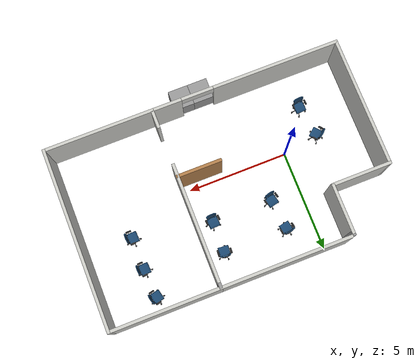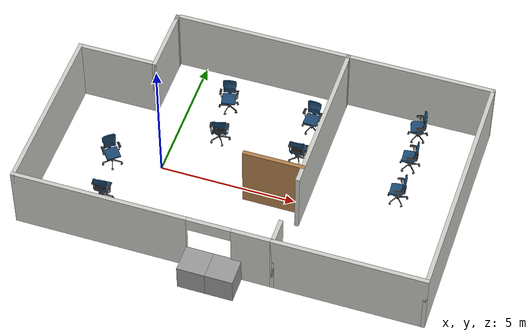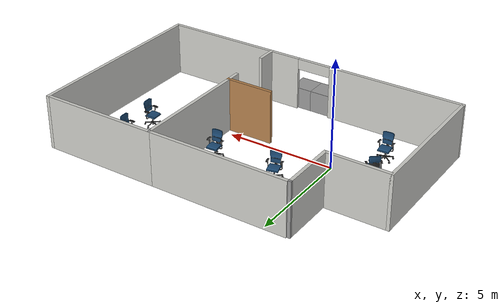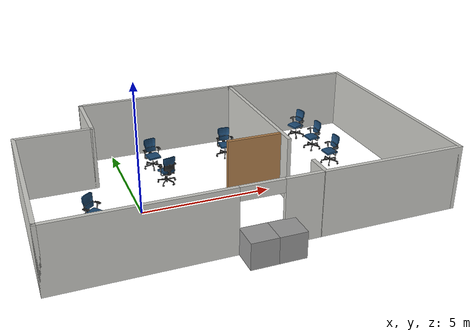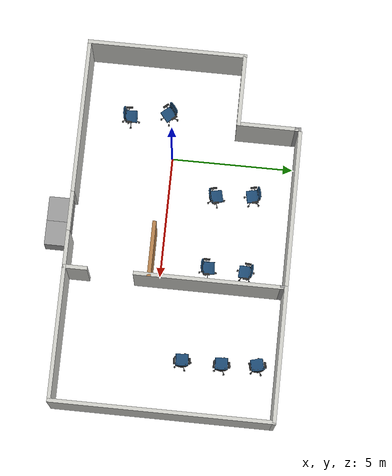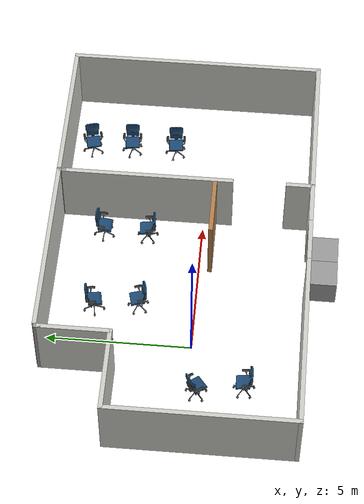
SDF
<sdf version="1.6">
 <world name="velmaverse">
  <scene><ambient>1.0 1.0 1.0 1.0</ambient><shadows>0</shadows></scene>
  <plugin name="ocznica" filename="libocznica.so"/>
  <light type="directional" name="sun1">
   <cast_shadows>false</cast_shadows>
   <pose>0 0 10 0 0 0</pose>
   <diffuse>1 1 1 0.5</diffuse>
   <specular>0 0 0 1</specular>
   <attenuation><range>1000</range><constant>1</constant><linear>1</linear><quadratic>0</quadratic></attenuation>
   <direction>0 0 -1</direction>
  </light>
  <light type="directional" name="sun2">
   <cast_shadows>false</cast_shadows>
   <pose>-20 -20 10 0 0 0</pose>
   <diffuse>1 1 1 0.5</diffuse>
   <specular>0 0 0 1</specular>
   <attenuation><range>1000</range><constant>1</constant><linear>1</linear><quadratic>0</quadratic></attenuation>
   <direction>0.5 0.5 0</direction>
  </light>
  <light type="directional" name="sun3">
   <cast_shadows>false</cast_shadows>
   <pose>-20 20 10 0 0 0</pose>
   <diffuse>1 1 1 0.5</diffuse>
   <specular>0 0 0 1</specular>
   <attenuation><range>1000</range><constant>1</constant><linear>1</linear><quadratic>0</quadratic></attenuation>
   <direction>0.5 -0.5 0</direction>
  </light>
  <light type="directional" name="sun4">
   <cast_shadows>false</cast_shadows>
   <pose>20 -20 10 0 0 0</pose>
   <diffuse>1 1 1 0.5</diffuse>
   <specular>0 0 0 1</specular>
   <attenuation><range>1000</range><constant>1</constant><linear>1</linear><quadratic>0</quadratic></attenuation>
   <direction>-0.5 0.5 0</direction>
  </light>
  <light type="directional" name="sun5">
   <cast_shadows>false</cast_shadows>
   <pose>20 20 10 0 0 0</pose>
   <diffuse>1 1 1 0.5</diffuse>
   <specular>0 0 0 1</specular>
   <attenuation><range>1000</range><constant>1</constant><linear>1</linear><quadratic>0</quadratic></attenuation>
   <direction>-0.5 -0.5 0</direction>
  </light>
  <light type="directional" name="sun6">
   <cast_shadows>false</cast_shadows>
   <pose>-20 0 10 0 0 0</pose>
   <diffuse>1 1 1 1</diffuse>
   <specular>0 0 0 1</specular>
   <attenuation><range>1000</range><constant>1</constant><linear>1</linear><quadratic>0</quadratic></attenuation>
   <direction>1 0 0</direction>
  </light>
  <light type="directional" name="sun7">
   <cast_shadows>false</cast_shadows>
   <pose>20 0 10 0 0 0</pose>
   <diffuse>1 1 1 1</diffuse>
   <specular>0 0 0 1</specular>
   <attenuation><range>1000</range><constant>1</constant><linear>1</linear><quadratic>0</quadratic></attenuation>
   <direction>-1 0 0</direction>
  </light>
  <light type="directional" name="sun8">
   <cast_shadows>false</cast_shadows>
   <pose>0 -20 10 0 0 0</pose>
   <diffuse>1 1 1 1</diffuse>
   <specular>0 0 0 1</specular>
   <attenuation><range>1000</range><constant>1</constant><linear>1</linear><quadratic>0</quadratic></attenuation>
   <direction>0 1 0</direction>
  </light>
  <light type="directional" name="sun9">
   <cast_shadows>false</cast_shadows>
   <pose>0 20 10 0 0 0</pose>
   <diffuse>1 1 1 1</diffuse>
   <specular>0 0 0 1</specular>
   <attenuation><range>1000</range><constant>1</constant><linear>1</linear><quadratic>0</quadratic></attenuation>
   <direction>0 -1 0</direction>
  </light>
  <model name="Sala"><include><uri>model://Sala</uri></include></model>
  <model name="chair1"><include><uri>model://chair</uri></include><pose>-2.0 -1.54 0 0 0 -2.18</pose></model>
  <model name="chair2"><include><uri>model://chair</uri></include><pose>4.05 2.26 0 0 0 -2.18</pose></model>
  <model name="chair3"><include><uri>model://chair</uri></include><pose>1.0 2.21 0 0 0 -2.0</pose></model>
  <model name="chair4"><include><uri>model://chair</uri></include><pose>1.9 3.21 0 0 0 1.09</pose></model>
  <model name="chair5"><include><uri>model://chair</uri></include><pose>5.0 3.07 0 0 0 0.84</pose></model>
  <model name="chair6"><include><uri>model://chair</uri></include><pose>-1.18 -0.29 0 0 0 1.59</pose></model>
  <model name="chair7"><include><uri>model://chair</uri></include><pose>8.08 0.76 0 0 0 -0.606</pose></model>
  <model name="chair8"><include><uri>model://chair</uri></include><pose>8.08 2.36 0 0 0 -0.606</pose></model>
  <model name="chair9"><include><uri>model://chair</uri></include><pose>8.08 3.75 0 0 0 -0.426</pose></model>
  <model name="box_door_1"><include><uri>model://box</uri><pose>2.8 -4.3 0.5 0 0 0</pose></include></model>
  <model name="box_door_2"><include><uri>model://box</uri><pose>3.8 -4.3 0.5 0 0 0</pose></include></model>
 </world>
</sdf>

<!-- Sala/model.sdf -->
<sdf version='1.6'>
  <model name='Sala'>
    <pose frame=''>3.38391 0.662582 0 0 -0 0</pose>
    <link name='Wall_0'>
      <pose frame=''>-2.675 -4.425 0 0 -0 0</pose>
      <visual name='Wall_0_Visual_0'>
        <pose frame=''>-1.56963 0 1.25 0 -0 0</pose>
        <geometry>
          <box>
            <size>6.36074 0.15 2.5</size>
          </box>
        </geometry>
        <material>
          <script>
            <uri>file://media/materials/scripts/gazebo.material</uri>
            <name>Gazebo/CeilingTiled</name>
          </script>
          <ambient>1 1 1 1</ambient>
        </material>
      </visual>
      <collision name='Wall_0_Collision_0'>
        <geometry>
          <box>
            <size>6.36074 0.15 2.5</size>
          </box>
        </geometry>
        <pose frame=''>-1.56963 0 1.25 0 -0 0</pose>
      </collision>
      <visual name='Wall_0_Visual_1'>
        <pose frame=''>3.98037 0 1.25 0 -0 0</pose>
        <geometry>
          <box>
            <size>1.53926 0.15 2.5</size>
          </box>
        </geometry>
        <material>
          <script>
            <uri>file://media/materials/scripts/gazebo.material</uri>
            <name>Gazebo/CeilingTiled</name>
          </script>
          <ambient>1 1 1 1</ambient>
        </material>
      </visual>
      <collision name='Wall_0_Collision_1'>
        <geometry>
          <box>
            <size>1.53926 0.15 2.5</size>
          </box>
        </geometry>
        <pose frame=''>3.98037 0 1.25 0 -0 0</pose>
      </collision>
      <visual name='Wall_0_Visual_2'>
        <pose frame=''>2.41074 0 2.25 0 -0 0</pose>
        <geometry>
          <box>
            <size>1.6 0.15 0.5</size>
          </box>
        </geometry>
        <material>
          <script>
            <uri>file://media/materials/scripts/gazebo.material</uri>
            <name>Gazebo/CeilingTiled</name>
          </script>
          <ambient>1 1 1 1</ambient>
        </material>
      </visual>
      <collision name='Wall_0_Collision_2'>
        <geometry>
          <box>
            <size>1.6 0.15 0.5</size>
          </box>
        </geometry>
        <pose frame=''>2.41074 0 2.25 0 -0 0</pose>
      </collision>
    </link>
    <link name='Wall_13'>
      <collision name='Wall_13_Collision'>
        <geometry>
          <box>
            <size>6 0.15 2.5</size>
          </box>
        </geometry>
        <pose frame=''>0 0 1.25 0 -0 0</pose>
      </collision>
      <visual name='Wall_13_Visual'>
        <pose frame=''>0 0 1.25 0 -0 0</pose>
        <geometry>
          <box>
            <size>6 0.15 2.5</size>
          </box>
        </geometry>
        <material>
          <script>
            <uri>file://media/materials/scripts/gazebo.material</uri>
            <name>Gazebo/CeilingTiled</name>
          </script>
          <ambient>1 1 1 1</ambient>
        </material>
      </visual>
      <pose frame=''>2 1.33 0 0 -0 1.5708</pose>
    </link>
    <link name='Wall_17'>
      <collision name='Wall_17_Collision'>
        <geometry>
          <box>
            <size>9 0.15 2.5</size>
          </box>
        </geometry>
        <pose frame=''>0 0 1.25 0 -0 0</pose>
      </collision>
      <visual name='Wall_17_Visual'>
        <pose frame=''>0 0 1.25 0 -0 0</pose>
        <geometry>
          <box>
            <size>9 0.15 2.5</size>
          </box>
        </geometry>
        <material>
          <script>
            <uri>file://media/materials/scripts/gazebo.material</uri>
            <name>Gazebo/CeilingTiled</name>
          </script>
          <ambient>1 1 1 1</ambient>
        </material>
      </visual>
      <pose frame=''>7.35 0 0 0 -0 1.5708</pose>
    </link>
    <link name='Wall_18'>
      <collision name='Wall_18_Collision'>
        <geometry>
          <box>
            <size>5.5 0.15 2.5</size>
          </box>
        </geometry>
        <pose frame=''>0 0 1.25 0 -0 0</pose>
      </collision>
      <visual name='Wall_18_Visual'>
        <pose frame=''>0 0 1.25 0 -0 0</pose>
        <geometry>
          <box>
            <size>5.5 0.15 2.5</size>
          </box>
        </geometry>
        <material>
          <script>
            <uri>file://media/materials/scripts/gazebo.material</uri>
            <name>Gazebo/CeilingTiled</name>
          </script>
          <ambient>1 1 1 1</ambient>
        </material>
      </visual>
      <pose frame=''>4.675 4.425 0 0 -0 3.14159</pose>
    </link>
    <link name='Wall_19'>
      <collision name='Wall_19_Collision'>
        <geometry>
          <box>
            <size>0.32 0.15 2.5</size>
          </box>
        </geometry>
        <pose frame=''>0 0 1.25 0 -0 0</pose>
      </collision>
      <visual name='Wall_19_Visual'>
        <pose frame=''>0 0 1.25 0 -0 0</pose>
        <geometry>
          <box>
            <size>0.32 0.15 2.5</size>
          </box>
        </geometry>
        <material>
          <script>
            <uri>file://media/materials/scripts/gazebo.material</uri>
            <name>Gazebo/Grey</name>
          </script>
          <ambient>1 1 1 1</ambient>
        </material>
      </visual>
      <pose frame=''>2 4.34 0 0 0 -1.5708</pose>
    </link>
    <link name='Wall_21'>
      <collision name='Wall_21_Collision'>
        <geometry>
          <box>
            <size>6.5 0.15 2.5</size>
          </box>
        </geometry>
        <pose frame=''>0 0 1.25 0 -0 0</pose>
      </collision>
      <visual name='Wall_21_Visual'>
        <pose frame=''>0 0 1.25 0 -0 0</pose>
        <geometry>
          <box>
            <size>6.5 0.15 2.5</size>
          </box>
        </geometry>
        <material>
          <script>
            <uri>file://media/materials/scripts/gazebo.material</uri>
            <name>Gazebo/CeilingTiled</name>
          </script>
          <ambient>1 1 1 1</ambient>
        </material>
      </visual>
      <pose frame=''>-7.35 -1.25 0 0 -0 1.5708</pose>
    </link>
    <link name='Wall_22'>
      <collision name='Wall_22_Collision'>
        <geometry>
          <box>
            <size>3 0.15 2.5</size>
          </box>
        </geometry>
        <pose frame=''>0 0 1.25 0 -0 0</pose>
      </collision>
      <visual name='Wall_22_Visual'>
        <pose frame=''>0 0 1.25 0 -0 0</pose>
        <geometry>
          <box>
            <size>3 0.15 2.5</size>
          </box>
        </geometry>
        <material>
          <script>
            <uri>file://media/materials/scripts/gazebo.material</uri>
            <name>Gazebo/CeilingTiled</name>
          </script>
          <ambient>1 1 1 1</ambient>
        </material>
      </visual>
      <pose frame=''>-5.925 1.925 0 0 -0 0</pose>
    </link>
    <link name='Wall_23'>
      <collision name='Wall_23_Collision'>
        <geometry>
          <box>
            <size>2.5 0.15 2.5</size>
          </box>
        </geometry>
        <pose frame=''>0 0 1.25 0 -0 0</pose>
      </collision>
      <visual name='Wall_23_Visual'>
        <pose frame=''>0 0 1.25 0 -0 0</pose>
        <geometry>
          <box>
            <size>2.5 0.15 2.5</size>
          </box>
        </geometry>
        <material>
          <script>
            <uri>file://media/materials/scripts/gazebo.material</uri>
            <name>Gazebo/CeilingTiled</name>
          </script>
          <ambient>1 1 1 1</ambient>
        </material>
      </visual>
      <pose frame=''>-4.5 3.1 0 0 -0 1.5708</pose>
    </link>
    <link name='Wall_24'>
      <collision name='Wall_24_Collision'>
        <geometry>
          <box>
            <size>0.25 0.15 2.5</size>
          </box>
        </geometry>
        <pose frame=''>0 0 1.25 0 -0 0</pose>
      </collision>
      <visual name='Wall_24_Visual'>
        <pose frame=''>0 0 1.25 0 -0 0</pose>
        <geometry>
          <box>
            <size>0.25 0.15 2.5</size>
          </box>
        </geometry>
        <material>
          <script>
            <uri>file://media/materials/scripts/gazebo.material</uri>
            <name>Gazebo/Grey</name>
          </script>
          <ambient>1 1 1 1</ambient>
        </material>
      </visual>
      <pose frame=''>-4.5 4.325 0 0 -0 1.5708</pose>
    </link>
    <link name='Wall_27'>
      <collision name='Wall_27_Collision'>
        <geometry>
          <box>
            <size>6.5 0.15 2.5</size>
          </box>
        </geometry>
        <pose frame=''>0 0 1.25 0 -0 0</pose>
      </collision>
      <visual name='Wall_27_Visual'>
        <pose frame=''>0 0 1.25 0 -0 0</pose>
        <geometry>
          <box>
            <size>6.5 0.15 2.5</size>
          </box>
        </geometry>
        <material>
          <script>
            <uri>file://media/materials/scripts/gazebo.material</uri>
            <name>Gazebo/CeilingTiled</name>
          </script>
          <ambient>1 1 1 1</ambient>
        </material>
      </visual>
      <pose frame=''>-1.175 4.425 0 0 -0 3.14159</pose>
    </link>
    <link name='Wall_29'>
      <collision name='Wall_29_Collision'>
        <geometry>
          <box>
            <size>2.25 0.15 2.5</size>
          </box>
        </geometry>
        <pose frame=''>0 0 1.25 0 -0 0</pose>
      </collision>
      <visual name='Wall_29_Visual'>
        <pose frame=''>0 0 1.25 0 -0 0</pose>
        <geometry>
          <box>
            <size>2.25 0.15 2.5</size>
          </box>
        </geometry>
        <material>
          <script>
            <uri>file://media/materials/scripts/gazebo.material</uri>
            <name>Gazebo/Wood</name>
          </script>
          <ambient>1 1 1 1</ambient>
        </material>
      </visual>
      <pose frame=''>0.949972 -1.03906 0 0 -0 3.14159</pose>
    </link>
    <link name='Wall_6'>
      <collision name='Wall_6_Collision'>
        <geometry>
          <box>
            <size>5.5 0.15 2.5</size>
          </box>
        </geometry>
        <pose frame=''>0 0 1.25 0 -0 0</pose>
      </collision>
      <visual name='Wall_6_Visual'>
        <pose frame=''>0 0 1.25 0 -0 0</pose>
        <geometry>
          <box>
            <size>5.5 0.15 2.5</size>
          </box>
        </geometry>
        <material>
          <script>
            <uri>file://media/materials/scripts/gazebo.material</uri>
            <name>Gazebo/CeilingTiled</name>
          </script>
          <ambient>1 1 1 1</ambient>
        </material>
      </visual>
      <pose frame=''>4.675 -4.425 0 0 -0 0</pose>
    </link>
    <link name='Wall_9'>
      <collision name='Wall_9_Collision'>
        <geometry>
          <box>
            <size>1 0.15 2.5</size>
          </box>
        </geometry>
        <pose frame=''>0 0 1.25 0 -0 0</pose>
      </collision>
      <visual name='Wall_9_Visual'>
        <pose frame=''>0 0 1.25 0 -0 0</pose>
        <geometry>
          <box>
            <size>1 0.15 2.5</size>
          </box>
        </geometry>
        <material>
          <script>
            <uri>file://media/materials/scripts/gazebo.material</uri>
            <name>Gazebo/CeilingTiled</name>
          </script>
          <ambient>1 0.764706 0.305882 1</ambient>
        </material>
      </visual>
      <pose frame=''>2 -4 0 0 -0 1.5708</pose>
    </link>
    <static>1</static>
  </model>
</sdf>

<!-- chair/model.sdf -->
<sdf version="1.5">
  <model name="chair">
  	<static>1</static>
    <link name="chair_base">
      <inertial>
        <mass>25.0</mass>
      </inertial>
      <collision name="collision">
        <pose>0 0.575 0 0 0 0.707</pose>
        <geometry>
          <box>
            <size>0.6 0.6 1.5</size>
          </box>
        </geometry>
      </collision>
      <visual name="visual">
        <cast_shadows>0</cast_shadows>
        <geometry>
          <mesh>
            <uri>model://chair/meshes/chair.dae</uri>
          </mesh>
        </geometry>
      </visual>
    </link>
  </model>
</sdf>

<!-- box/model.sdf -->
<sdf version='1.6'>
  <model name='box'>
    <link name='link_0'>
      <pose frame=''>-0 -1e-06 0 0 -0 0</pose>
      <inertial>
        <mass>1</mass>
        <inertia>
          <ixx>0.166667</ixx>
          <ixy>0</ixy>
          <ixz>0</ixz>
          <iyy>0.166667</iyy>
          <iyz>0</iyz>
          <izz>0.166667</izz>
        </inertia>
      </inertial>
      <visual name='visual'>
        <pose frame=''>0 0 0 0 -0 0</pose>
        <geometry>
          <box>
            <size>1 1 1</size>
          </box>
        </geometry>
        <material>
          <lighting>1</lighting>
          <script>
            <uri>file://media/materials/scripts/gazebo.material</uri>
            <name>Gazebo/Grey</name>
          </script>
          <ambient>0.3 0.3 0.3 1</ambient>
          <diffuse>0.7 0.7 0.7 1</diffuse>
          <specular>0.01 0.01 0.01 1</specular>
          <emissive>0 0 0 1</emissive>
        </material>
        <transparency>0</transparency>
        <cast_shadows>1</cast_shadows>
      </visual>
      <collision name='collision'>
        <laser_retro>0</laser_retro>
        <max_contacts>10</max_contacts>
        <pose frame=''>0 0 0 0 -0 0</pose>
        <geometry>
          <box>
            <size>1 1 1</size>
          </box>
        </geometry>
        <surface>
          <friction>
            <ode>
              <mu>1</mu>
              <mu2>1</mu2>
              <fdir1>0 0 0</fdir1>
              <slip1>0</slip1>
              <slip2>0</slip2>
            </ode>
            <torsional>
              <coefficient>1</coefficient>
              <patch_radius>0</patch_radius>
              <surface_radius>0</surface_radius>
              <use_patch_radius>1</use_patch_radius>
              <ode>
                <slip>0</slip>
              </ode>
            </torsional>
          </friction>
          <bounce>
            <restitution_coefficient>0</restitution_coefficient>
            <threshold>1e+06</threshold>
          </bounce>
          <contact>
            <collide_without_contact>0</collide_without_contact>
            <collide_without_contact_bitmask>1</collide_without_contact_bitmask>
            <collide_bitmask>1</collide_bitmask>
            <ode>
              <soft_cfm>0</soft_cfm>
              <soft_erp>0.2</soft_erp>
              <kp>1e+13</kp>
              <kd>1</kd>
              <max_vel>0.01</max_vel>
              <min_depth>0</min_depth>
            </ode>
            <bullet>
              <split_impulse>1</split_impulse>
              <split_impulse_penetration_threshold>-0.01</split_impulse_penetration_threshold>
              <soft_cfm>0</soft_cfm>
              <soft_erp>0.2</soft_erp>
              <kp>1e+13</kp>
              <kd>1</kd>
            </bullet>
          </contact>
        </surface>
      </collision>
    </link>
    <static>0</static>
    <allow_auto_disable>1</allow_auto_disable>
  </model>
</sdf>
